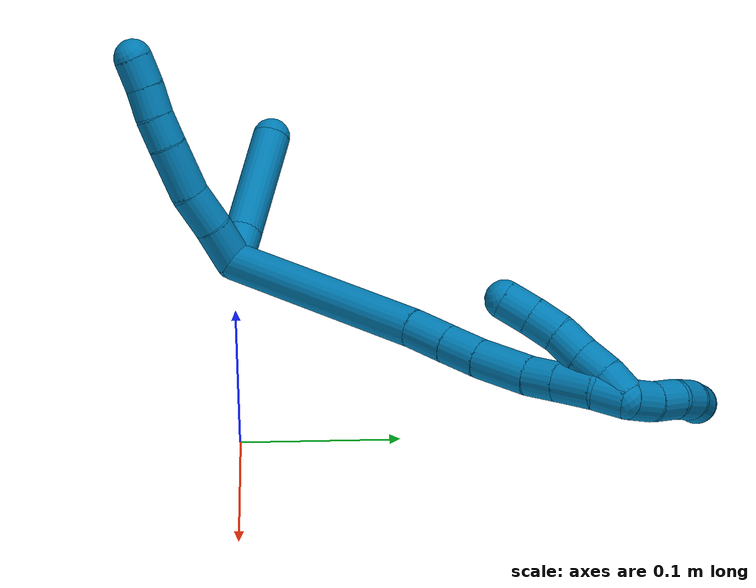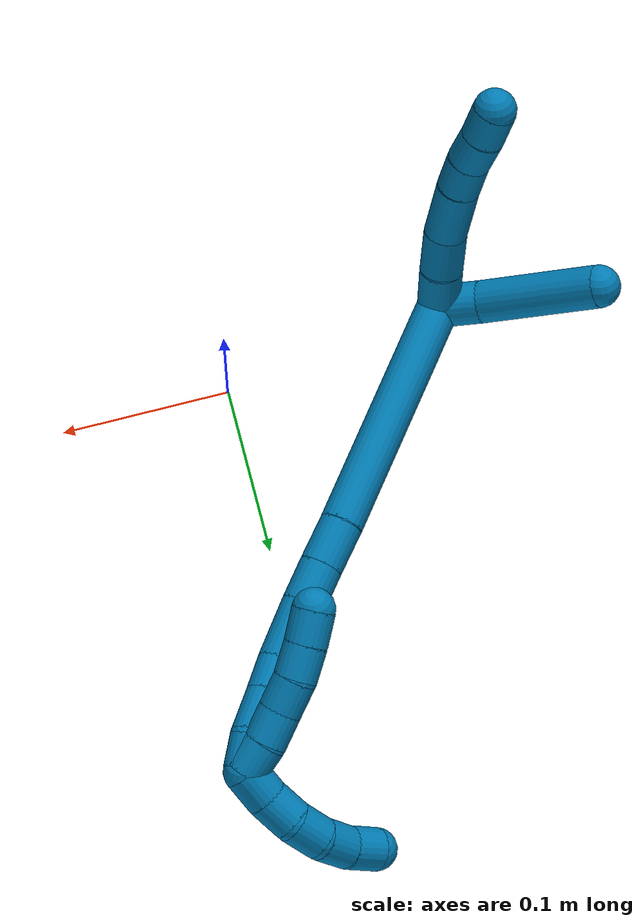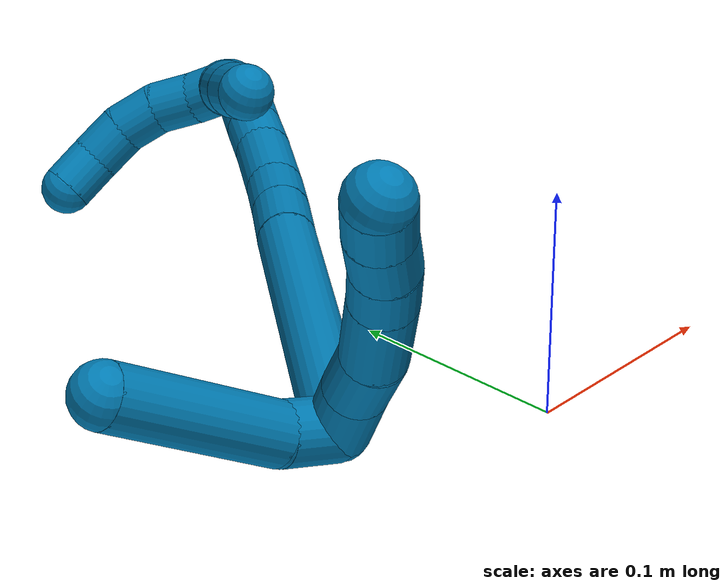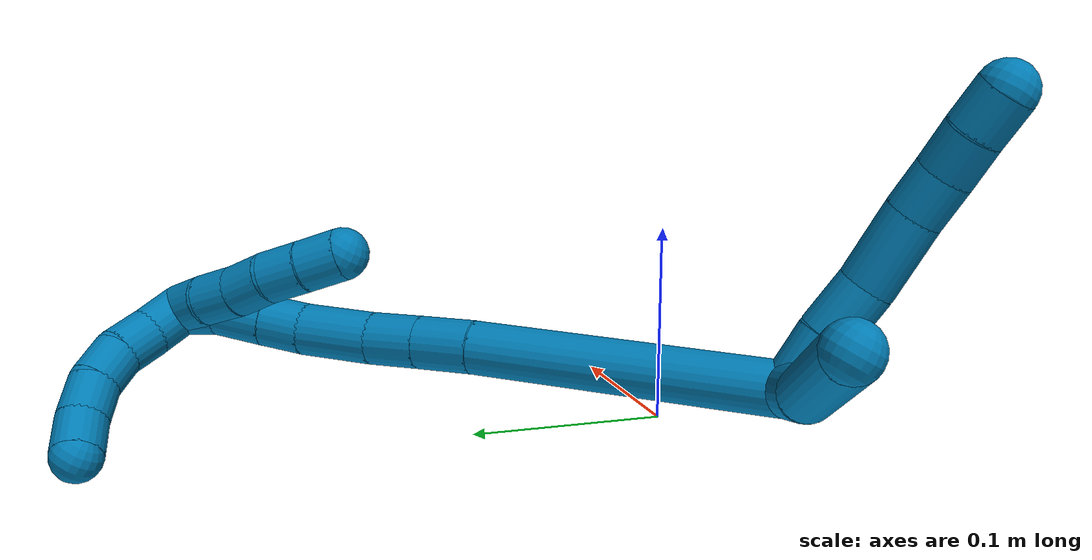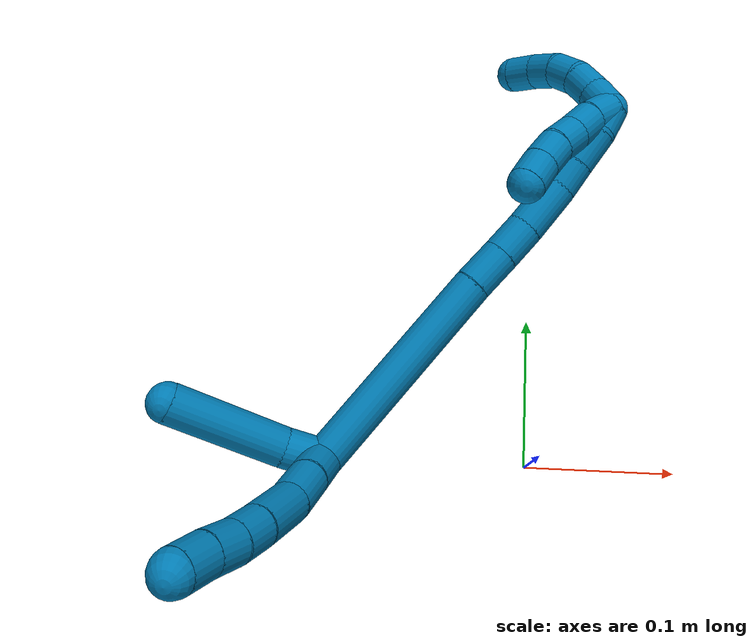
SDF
<sdf version="1.7">
 <world name="default">
  <model name="9">
   <static>0</static>
   <link name="9">
    <collision name="collision-cylinder-e_1_2_8">
     <pose>-0.001161 0.000855 0.013918 -0.061347 -0.083066 0.00255</pose>
     <geometry><cylinder><radius>0.0125</radius><length>0.027984</length></cylinder></geometry>
     <surface>
      <friction><ode><mu>1.16</mu><mu2>1.16</mu2><slip1>0</slip1><slip2>0</slip2></ode></friction>
      <contact><ode><kp>1e+06</kp><kd>1</kd><max_vel>0</max_vel><min_depth>0.001</min_depth></ode></contact>
     </surface>
    </collision>
    <visual name="visual-cylinder-e_1_2_8">
     <pose>-0.001161 0.000855 0.013918 -0.061347 -0.083066 0.00255</pose>
     <geometry><cylinder><radius>0.0125</radius><length>0.027984</length></cylinder></geometry>
     <material><ambient>0 0.490196 0.709804 1</ambient></material>
    </visual>
    <collision name="collision-cylinder-e_2_8_9">
     <pose>-0.00457 0.001947 0.04078 -0.018321 -0.171946 0.001579</pose>
     <geometry><cylinder><radius>0.0125</radius><length>0.026281</length></cylinder></geometry>
     <surface>
      <friction><ode><mu>1.16</mu><mu2>1.16</mu2><slip1>0</slip1><slip2>0</slip2></ode></friction>
      <contact><ode><kp>1e+06</kp><kd>1</kd><max_vel>0</max_vel><min_depth>0.001</min_depth></ode></contact>
     </surface>
    </collision>
    <visual name="visual-cylinder-e_2_8_9">
     <pose>-0.00457 0.001947 0.04078 -0.018321 -0.171946 0.001579</pose>
     <geometry><cylinder><radius>0.0125</radius><length>0.026281</length></cylinder></geometry>
     <material><ambient>0 0.490196 0.709804 1</ambient></material>
    </visual>
    <collision name="collision-cylinder-e_3_9_10">
     <pose>-0.009584 0.005665 0.07071 -0.202138 -0.158151 0.016072</pose>
     <geometry><cylinder><radius>0.0125</radius><length>0.035116</length></cylinder></geometry>
     <surface>
      <friction><ode><mu>1.16</mu><mu2>1.16</mu2><slip1>0</slip1><slip2>0</slip2></ode></friction>
      <contact><ode><kp>1e+06</kp><kd>1</kd><max_vel>0</max_vel><min_depth>0.001</min_depth></ode></contact>
     </surface>
    </collision>
    <visual name="visual-cylinder-e_3_9_10">
     <pose>-0.009584 0.005665 0.07071 -0.202138 -0.158151 0.016072</pose>
     <geometry><cylinder><radius>0.0125</radius><length>0.035116</length></cylinder></geometry>
     <material><ambient>0 0.490196 0.709804 1</ambient></material>
    </visual>
    <collision name="collision-cylinder-e_4_10_11">
     <pose>-0.01474 0.01145 0.097387 -0.233407 -0.235551 0.027742</pose>
     <geometry><cylinder><radius>0.0125</radius><length>0.020487</length></cylinder></geometry>
     <surface>
      <friction><ode><mu>1.16</mu><mu2>1.16</mu2><slip1>0</slip1><slip2>0</slip2></ode></friction>
      <contact><ode><kp>1e+06</kp><kd>1</kd><max_vel>0</max_vel><min_depth>0.001</min_depth></ode></contact>
     </surface>
    </collision>
    <visual name="visual-cylinder-e_4_10_11">
     <pose>-0.01474 0.01145 0.097387 -0.233407 -0.235551 0.027742</pose>
     <geometry><cylinder><radius>0.0125</radius><length>0.020487</length></cylinder></geometry>
     <material><ambient>0 0.490196 0.709804 1</ambient></material>
    </visual>
    <collision name="collision-cylinder-e_5_11_12">
     <pose>-0.019771 0.017122 0.116128 -0.35624 -0.266882 0.048324</pose>
     <geometry><cylinder><radius>0.0125</radius><length>0.020023</length></cylinder></geometry>
     <surface>
      <friction><ode><mu>1.16</mu><mu2>1.16</mu2><slip1>0</slip1><slip2>0</slip2></ode></friction>
      <contact><ode><kp>1e+06</kp><kd>1</kd><max_vel>0</max_vel><min_depth>0.001</min_depth></ode></contact>
     </surface>
    </collision>
    <visual name="visual-cylinder-e_5_11_12">
     <pose>-0.019771 0.017122 0.116128 -0.35624 -0.266882 0.048324</pose>
     <geometry><cylinder><radius>0.0125</radius><length>0.020023</length></cylinder></geometry>
     <material><ambient>0 0.490196 0.709804 1</ambient></material>
    </visual>
    <collision name="collision-cylinder-e_6_12_6">
     <pose>-0.025086 0.023081 0.134518 -0.270647 -0.269352 0.036893</pose>
     <geometry><cylinder><radius>0.0125</radius><length>0.020108</length></cylinder></geometry>
     <surface>
      <friction><ode><mu>1.16</mu><mu2>1.16</mu2><slip1>0</slip1><slip2>0</slip2></ode></friction>
      <contact><ode><kp>1e+06</kp><kd>1</kd><max_vel>0</max_vel><min_depth>0.001</min_depth></ode></contact>
     </surface>
    </collision>
    <visual name="visual-cylinder-e_6_12_6">
     <pose>-0.025086 0.023081 0.134518 -0.270647 -0.269352 0.036893</pose>
     <geometry><cylinder><radius>0.0125</radius><length>0.020108</length></cylinder></geometry>
     <material><ambient>0 0.490196 0.709804 1</ambient></material>
    </visual>
    <collision name="collision-cylinder-e_1_2_13">
     <pose>-0.008686 0.009014 0.00194 -1.35885 -0.755563 0.620375</pose>
     <geometry><cylinder><radius>0.0125</radius><length>0.025334</length></cylinder></geometry>
     <surface>
      <friction><ode><mu>1.16</mu><mu2>1.16</mu2><slip1>0</slip1><slip2>0</slip2></ode></friction>
      <contact><ode><kp>1e+06</kp><kd>1</kd><max_vel>0</max_vel><min_depth>0.001</min_depth></ode></contact>
     </surface>
    </collision>
    <visual name="visual-cylinder-e_1_2_13">
     <pose>-0.008686 0.009014 0.00194 -1.35885 -0.755563 0.620375</pose>
     <geometry><cylinder><radius>0.0125</radius><length>0.025334</length></cylinder></geometry>
     <material><ambient>0 0.490196 0.709804 1</ambient></material>
    </visual>
    <collision name="collision-cylinder-e_2_13_5">
     <pose>-0.036595 0.047514 0.016318 -1.17159 -0.540929 0.363844</pose>
     <geometry><cylinder><radius>0.0125</radius><length>0.074666</length></cylinder></geometry>
     <surface>
      <friction><ode><mu>1.16</mu><mu2>1.16</mu2><slip1>0</slip1><slip2>0</slip2></ode></friction>
      <contact><ode><kp>1e+06</kp><kd>1</kd><max_vel>0</max_vel><min_depth>0.001</min_depth></ode></contact>
     </surface>
    </collision>
    <visual name="visual-cylinder-e_2_13_5">
     <pose>-0.036595 0.047514 0.016318 -1.17159 -0.540929 0.363844</pose>
     <geometry><cylinder><radius>0.0125</radius><length>0.074666</length></cylinder></geometry>
     <material><ambient>0 0.490196 0.709804 1</ambient></material>
    </visual>
    <collision name="collision-cylinder-e_1_2_14">
     <pose>0.061148 0.025149 -0.028866 -2.4249 1.01141 -1.95224</pose>
     <geometry><cylinder><radius>0.0125</radius><length>0.144289</length></cylinder></geometry>
     <surface>
      <friction><ode><mu>1.16</mu><mu2>1.16</mu2><slip1>0</slip1><slip2>0</slip2></ode></friction>
      <contact><ode><kp>1e+06</kp><kd>1</kd><max_vel>0</max_vel><min_depth>0.001</min_depth></ode></contact>
     </surface>
    </collision>
    <visual name="visual-cylinder-e_1_2_14">
     <pose>0.061148 0.025149 -0.028866 -2.4249 1.01141 -1.95224</pose>
     <geometry><cylinder><radius>0.0125</radius><length>0.144289</length></cylinder></geometry>
     <material><ambient>0 0.490196 0.709804 1</ambient></material>
    </visual>
    <collision name="collision-cylinder-e_2_14_15">
     <pose>0.133967 0.054398 -0.063696 -2.53936 1.01572 -2.12365</pose>
     <geometry><cylinder><radius>0.0125</radius><length>0.027464</length></cylinder></geometry>
     <surface>
      <friction><ode><mu>1.16</mu><mu2>1.16</mu2><slip1>0</slip1><slip2>0</slip2></ode></friction>
      <contact><ode><kp>1e+06</kp><kd>1</kd><max_vel>0</max_vel><min_depth>0.001</min_depth></ode></contact>
     </surface>
    </collision>
    <visual name="visual-cylinder-e_2_14_15">
     <pose>0.133967 0.054398 -0.063696 -2.53936 1.01572 -2.12365</pose>
     <geometry><cylinder><radius>0.0125</radius><length>0.027464</length></cylinder></geometry>
     <material><ambient>0 0.490196 0.709804 1</ambient></material>
    </visual>
    <collision name="collision-cylinder-e_3_15_16">
     <pose>0.156081 0.062391 -0.075151 -2.52479 0.998324 -2.08402</pose>
     <geometry><cylinder><radius>0.0125</radius><length>0.02485</length></cylinder></geometry>
     <surface>
      <friction><ode><mu>1.16</mu><mu2>1.16</mu2><slip1>0</slip1><slip2>0</slip2></ode></friction>
      <contact><ode><kp>1e+06</kp><kd>1</kd><max_vel>0</max_vel><min_depth>0.001</min_depth></ode></contact>
     </surface>
    </collision>
    <visual name="visual-cylinder-e_3_15_16">
     <pose>0.156081 0.062391 -0.075151 -2.52479 0.998324 -2.08402</pose>
     <geometry><cylinder><radius>0.0125</radius><length>0.02485</length></cylinder></geometry>
     <material><ambient>0 0.490196 0.709804 1</ambient></material>
    </visual>
    <collision name="collision-cylinder-e_4_16_17">
     <pose>0.181741 0.073028 -0.0879 -2.39292 0.993602 -1.88747</pose>
     <geometry><cylinder><radius>0.0125</radius><length>0.036315</length></cylinder></geometry>
     <surface>
      <friction><ode><mu>1.16</mu><mu2>1.16</mu2><slip1>0</slip1><slip2>0</slip2></ode></friction>
      <contact><ode><kp>1e+06</kp><kd>1</kd><max_vel>0</max_vel><min_depth>0.001</min_depth></ode></contact>
     </surface>
    </collision>
    <visual name="visual-cylinder-e_4_16_17">
     <pose>0.181741 0.073028 -0.0879 -2.39292 0.993602 -1.88747</pose>
     <geometry><cylinder><radius>0.0125</radius><length>0.036315</length></cylinder></geometry>
     <material><ambient>0 0.490196 0.709804 1</ambient></material>
    </visual>
    <collision name="collision-cylinder-e_5_17_18">
     <pose>0.205509 0.08455 -0.098517 -2.1835 0.971578 -1.5872</pose>
     <geometry><cylinder><radius>0.0125</radius><length>0.020712</length></cylinder></geometry>
     <surface>
      <friction><ode><mu>1.16</mu><mu2>1.16</mu2><slip1>0</slip1><slip2>0</slip2></ode></friction>
      <contact><ode><kp>1e+06</kp><kd>1</kd><max_vel>0</max_vel><min_depth>0.001</min_depth></ode></contact>
     </surface>
    </collision>
    <visual name="visual-cylinder-e_5_17_18">
     <pose>0.205509 0.08455 -0.098517 -2.1835 0.971578 -1.5872</pose>
     <geometry><cylinder><radius>0.0125</radius><length>0.020712</length></cylinder></geometry>
     <material><ambient>0 0.490196 0.709804 1</ambient></material>
    </visual>
    <collision name="collision-cylinder-e_6_18_19">
     <pose>0.225085 0.095203 -0.106064 -2.19022 0.991351 -1.6192</pose>
     <geometry><cylinder><radius>0.0125</radius><length>0.02635</length></cylinder></geometry>
     <surface>
      <friction><ode><mu>1.16</mu><mu2>1.16</mu2><slip1>0</slip1><slip2>0</slip2></ode></friction>
      <contact><ode><kp>1e+06</kp><kd>1</kd><max_vel>0</max_vel><min_depth>0.001</min_depth></ode></contact>
     </surface>
    </collision>
    <visual name="visual-cylinder-e_6_18_19">
     <pose>0.225085 0.095203 -0.106064 -2.19022 0.991351 -1.6192</pose>
     <geometry><cylinder><radius>0.0125</radius><length>0.02635</length></cylinder></geometry>
     <material><ambient>0 0.490196 0.709804 1</ambient></material>
    </visual>
    <collision name="collision-cylinder-e_7_19_1">
     <pose>0.243207 0.105968 -0.115341 -2.37584 0.788134 -1.60272</pose>
     <geometry><cylinder><radius>0.0125</radius><length>0.02002</length></cylinder></geometry>
     <surface>
      <friction><ode><mu>1.16</mu><mu2>1.16</mu2><slip1>0</slip1><slip2>0</slip2></ode></friction>
      <contact><ode><kp>1e+06</kp><kd>1</kd><max_vel>0</max_vel><min_depth>0.001</min_depth></ode></contact>
     </surface>
    </collision>
    <visual name="visual-cylinder-e_7_19_1">
     <pose>0.243207 0.105968 -0.115341 -2.37584 0.788134 -1.60272</pose>
     <geometry><cylinder><radius>0.0125</radius><length>0.02002</length></cylinder></geometry>
     <material><ambient>0 0.490196 0.709804 1</ambient></material>
    </visual>
    <collision name="collision-cylinder-e_1_1_20">
     <pose>0.248365 0.11731 -0.127821 -2.42421 -0.195151 0.510783</pose>
     <geometry><cylinder><radius>0.0125</radius><length>0.02</length></cylinder></geometry>
     <surface>
      <friction><ode><mu>1.16</mu><mu2>1.16</mu2><slip1>0</slip1><slip2>0</slip2></ode></friction>
      <contact><ode><kp>1e+06</kp><kd>1</kd><max_vel>0</max_vel><min_depth>0.001</min_depth></ode></contact>
     </surface>
    </collision>
    <visual name="visual-cylinder-e_1_1_20">
     <pose>0.248365 0.11731 -0.127821 -2.42421 -0.195151 0.510783</pose>
     <geometry><cylinder><radius>0.0125</radius><length>0.02</length></cylinder></geometry>
     <material><ambient>0 0.490196 0.709804 1</ambient></material>
    </visual>
    <collision name="collision-cylinder-e_2_20_21">
     <pose>0.243513 0.130998 -0.141469 -2.28345 -0.295571 0.629188</pose>
     <geometry><cylinder><radius>0.0125</radius><length>0.02</length></cylinder></geometry>
     <surface>
      <friction><ode><mu>1.16</mu><mu2>1.16</mu2><slip1>0</slip1><slip2>0</slip2></ode></friction>
      <contact><ode><kp>1e+06</kp><kd>1</kd><max_vel>0</max_vel><min_depth>0.001</min_depth></ode></contact>
     </surface>
    </collision>
    <visual name="visual-cylinder-e_2_20_21">
     <pose>0.243513 0.130998 -0.141469 -2.28345 -0.295571 0.629188</pose>
     <geometry><cylinder><radius>0.0125</radius><length>0.02</length></cylinder></geometry>
     <material><ambient>0 0.490196 0.709804 1</ambient></material>
    </visual>
    <collision name="collision-cylinder-e_3_21_22">
     <pose>0.23563 0.14353 -0.154599 -2.48538 -0.520117 1.32692</pose>
     <geometry><cylinder><radius>0.0125</radius><length>0.02</length></cylinder></geometry>
     <surface>
      <friction><ode><mu>1.16</mu><mu2>1.16</mu2><slip1>0</slip1><slip2>0</slip2></ode></friction>
      <contact><ode><kp>1e+06</kp><kd>1</kd><max_vel>0</max_vel><min_depth>0.001</min_depth></ode></contact>
     </surface>
    </collision>
    <visual name="visual-cylinder-e_3_21_22">
     <pose>0.23563 0.14353 -0.154599 -2.48538 -0.520117 1.32692</pose>
     <geometry><cylinder><radius>0.0125</radius><length>0.02</length></cylinder></geometry>
     <material><ambient>0 0.490196 0.709804 1</ambient></material>
    </visual>
    <collision name="collision-cylinder-e_4_22_23">
     <pose>0.223916 0.151744 -0.168256 -2.73511 -0.740242 2.16509</pose>
     <geometry><cylinder><radius>0.0125</radius><length>0.02</length></cylinder></geometry>
     <surface>
      <friction><ode><mu>1.16</mu><mu2>1.16</mu2><slip1>0</slip1><slip2>0</slip2></ode></friction>
      <contact><ode><kp>1e+06</kp><kd>1</kd><max_vel>0</max_vel><min_depth>0.001</min_depth></ode></contact>
     </surface>
    </collision>
    <visual name="visual-cylinder-e_4_22_23">
     <pose>0.223916 0.151744 -0.168256 -2.73511 -0.740242 2.16509</pose>
     <geometry><cylinder><radius>0.0125</radius><length>0.02</length></cylinder></geometry>
     <material><ambient>0 0.490196 0.709804 1</ambient></material>
    </visual>
    <collision name="collision-cylinder-e_5_23_4">
     <pose>0.209044 0.157134 -0.180314 -2.70366 -0.948719 2.32367</pose>
     <geometry><cylinder><radius>0.0125</radius><length>0.02</length></cylinder></geometry>
     <surface>
      <friction><ode><mu>1.16</mu><mu2>1.16</mu2><slip1>0</slip1><slip2>0</slip2></ode></friction>
      <contact><ode><kp>1e+06</kp><kd>1</kd><max_vel>0</max_vel><min_depth>0.001</min_depth></ode></contact>
     </surface>
    </collision>
    <visual name="visual-cylinder-e_5_23_4">
     <pose>0.209044 0.157134 -0.180314 -2.70366 -0.948719 2.32367</pose>
     <geometry><cylinder><radius>0.0125</radius><length>0.02</length></cylinder></geometry>
     <material><ambient>0 0.490196 0.709804 1</ambient></material>
    </visual>
    <collision name="collision-cylinder-e_1_1_24">
     <pose>0.242699 0.111183 -0.113944 -0.049681 -0.864072 0.022911</pose>
     <geometry><cylinder><radius>0.0125</radius><length>0.02</length></cylinder></geometry>
     <surface>
      <friction><ode><mu>1.16</mu><mu2>1.16</mu2><slip1>0</slip1><slip2>0</slip2></ode></friction>
      <contact><ode><kp>1e+06</kp><kd>1</kd><max_vel>0</max_vel><min_depth>0.001</min_depth></ode></contact>
     </surface>
    </collision>
    <visual name="visual-cylinder-e_1_1_24">
     <pose>0.242699 0.111183 -0.113944 -0.049681 -0.864072 0.022911</pose>
     <geometry><cylinder><radius>0.0125</radius><length>0.02</length></cylinder></geometry>
     <material><ambient>0 0.490196 0.709804 1</ambient></material>
    </visual>
    <collision name="collision-cylinder-e_2_24_25">
     <pose>0.227784 0.11013 -0.100774 0.202939 -0.819776 -0.088423</pose>
     <geometry><cylinder><radius>0.0125</radius><length>0.02</length></cylinder></geometry>
     <surface>
      <friction><ode><mu>1.16</mu><mu2>1.16</mu2><slip1>0</slip1><slip2>0</slip2></ode></friction>
      <contact><ode><kp>1e+06</kp><kd>1</kd><max_vel>0</max_vel><min_depth>0.001</min_depth></ode></contact>
     </surface>
    </collision>
    <visual name="visual-cylinder-e_2_24_25">
     <pose>0.227784 0.11013 -0.100774 0.202939 -0.819776 -0.088423</pose>
     <geometry><cylinder><radius>0.0125</radius><length>0.02</length></cylinder></geometry>
     <material><ambient>0 0.490196 0.709804 1</ambient></material>
    </visual>
    <collision name="collision-cylinder-e_3_25_26">
     <pose>0.213662 0.108048 -0.086804 0.096643 -0.749436 -0.038035</pose>
     <geometry><cylinder><radius>0.0125</radius><length>0.02</length></cylinder></geometry>
     <surface>
      <friction><ode><mu>1.16</mu><mu2>1.16</mu2><slip1>0</slip1><slip2>0</slip2></ode></friction>
      <contact><ode><kp>1e+06</kp><kd>1</kd><max_vel>0</max_vel><min_depth>0.001</min_depth></ode></contact>
     </surface>
    </collision>
    <visual name="visual-cylinder-e_3_25_26">
     <pose>0.213662 0.108048 -0.086804 0.096643 -0.749436 -0.038035</pose>
     <geometry><cylinder><radius>0.0125</radius><length>0.02</length></cylinder></geometry>
     <material><ambient>0 0.490196 0.709804 1</ambient></material>
    </visual>
    <collision name="collision-cylinder-e_4_26_27">
     <pose>0.20024 0.104835 -0.072445 0.340708 -0.722103 -0.12973</pose>
     <geometry><cylinder><radius>0.0125</radius><length>0.02</length></cylinder></geometry>
     <surface>
      <friction><ode><mu>1.16</mu><mu2>1.16</mu2><slip1>0</slip1><slip2>0</slip2></ode></friction>
      <contact><ode><kp>1e+06</kp><kd>1</kd><max_vel>0</max_vel><min_depth>0.001</min_depth></ode></contact>
     </surface>
    </collision>
    <visual name="visual-cylinder-e_4_26_27">
     <pose>0.20024 0.104835 -0.072445 0.340708 -0.722103 -0.12973</pose>
     <geometry><cylinder><radius>0.0125</radius><length>0.02</length></cylinder></geometry>
     <material><ambient>0 0.490196 0.709804 1</ambient></material>
    </visual>
    <collision name="collision-cylinder-e_5_27_3">
     <pose>0.187449 0.099265 -0.058132 0.400103 -0.666411 -0.140127</pose>
     <geometry><cylinder><radius>0.0125</radius><length>0.02</length></cylinder></geometry>
     <surface>
      <friction><ode><mu>1.16</mu><mu2>1.16</mu2><slip1>0</slip1><slip2>0</slip2></ode></friction>
      <contact><ode><kp>1e+06</kp><kd>1</kd><max_vel>0</max_vel><min_depth>0.001</min_depth></ode></contact>
     </surface>
    </collision>
    <visual name="visual-cylinder-e_5_27_3">
     <pose>0.187449 0.099265 -0.058132 0.400103 -0.666411 -0.140127</pose>
     <geometry><cylinder><radius>0.0125</radius><length>0.02</length></cylinder></geometry>
     <material><ambient>0 0.490196 0.709804 1</ambient></material>
    </visual>
    <collision name="collision-sphere-3">
     <pose>0.181267 0.096203 -0.050893 0 -0 0</pose>
     <geometry><sphere><radius>0.0125</radius></sphere></geometry>
     <surface>
      <friction><ode><mu>1.16</mu><mu2>1.16</mu2><slip1>0</slip1><slip2>0</slip2></ode></friction>
      <contact><ode><kp>1e+06</kp><kd>1</kd><max_vel>0</max_vel><min_depth>0.001</min_depth></ode></contact>
     </surface>
    </collision>
    <visual name="visual-sphere-3">
     <pose>0.181267 0.096203 -0.050893 0 -0 0</pose>
     <geometry><sphere><radius>0.0125</radius></sphere></geometry>
     <material><ambient>0 0.490196 0.709804 1</ambient></material>
    </visual>
    <collision name="collision-sphere-27">
     <pose>0.193631 0.102327 -0.065372 0 -0 0</pose>
     <geometry><sphere><radius>0.0125</radius></sphere></geometry>
     <surface>
      <friction><ode><mu>1.16</mu><mu2>1.16</mu2><slip1>0</slip1><slip2>0</slip2></ode></friction>
      <contact><ode><kp>1e+06</kp><kd>1</kd><max_vel>0</max_vel><min_depth>0.001</min_depth></ode></contact>
     </surface>
    </collision>
    <visual name="visual-sphere-27">
     <pose>0.193631 0.102327 -0.065372 0 -0 0</pose>
     <geometry><sphere><radius>0.0125</radius></sphere></geometry>
     <material><ambient>0 0.490196 0.709804 1</ambient></material>
    </visual>
    <collision name="collision-sphere-26">
     <pose>0.20685 0.107342 -0.079517 0 -0 0</pose>
     <geometry><sphere><radius>0.0125</radius></sphere></geometry>
     <surface>
      <friction><ode><mu>1.16</mu><mu2>1.16</mu2><slip1>0</slip1><slip2>0</slip2></ode></friction>
      <contact><ode><kp>1e+06</kp><kd>1</kd><max_vel>0</max_vel><min_depth>0.001</min_depth></ode></contact>
     </surface>
    </collision>
    <visual name="visual-sphere-26">
     <pose>0.20685 0.107342 -0.079517 0 -0 0</pose>
     <geometry><sphere><radius>0.0125</radius></sphere></geometry>
     <material><ambient>0 0.490196 0.709804 1</ambient></material>
    </visual>
    <collision name="collision-sphere-25">
     <pose>0.220474 0.108755 -0.094091 0 -0 0</pose>
     <geometry><sphere><radius>0.0125</radius></sphere></geometry>
     <surface>
      <friction><ode><mu>1.16</mu><mu2>1.16</mu2><slip1>0</slip1><slip2>0</slip2></ode></friction>
      <contact><ode><kp>1e+06</kp><kd>1</kd><max_vel>0</max_vel><min_depth>0.001</min_depth></ode></contact>
     </surface>
    </collision>
    <visual name="visual-sphere-25">
     <pose>0.220474 0.108755 -0.094091 0 -0 0</pose>
     <geometry><sphere><radius>0.0125</radius></sphere></geometry>
     <material><ambient>0 0.490196 0.709804 1</ambient></material>
    </visual>
    <collision name="collision-sphere-24">
     <pose>0.235094 0.111506 -0.107458 0 -0 0</pose>
     <geometry><sphere><radius>0.0125</radius></sphere></geometry>
     <surface>
      <friction><ode><mu>1.16</mu><mu2>1.16</mu2><slip1>0</slip1><slip2>0</slip2></ode></friction>
      <contact><ode><kp>1e+06</kp><kd>1</kd><max_vel>0</max_vel><min_depth>0.001</min_depth></ode></contact>
     </surface>
    </collision>
    <visual name="visual-sphere-24">
     <pose>0.235094 0.111506 -0.107458 0 -0 0</pose>
     <geometry><sphere><radius>0.0125</radius></sphere></geometry>
     <material><ambient>0 0.490196 0.709804 1</ambient></material>
    </visual>
    <collision name="collision-sphere-4">
     <pose>0.200918 0.159605 -0.185592 0 -0 0</pose>
     <geometry><sphere><radius>0.0125</radius></sphere></geometry>
     <surface>
      <friction><ode><mu>1.16</mu><mu2>1.16</mu2><slip1>0</slip1><slip2>0</slip2></ode></friction>
      <contact><ode><kp>1e+06</kp><kd>1</kd><max_vel>0</max_vel><min_depth>0.001</min_depth></ode></contact>
     </surface>
    </collision>
    <visual name="visual-sphere-4">
     <pose>0.200918 0.159605 -0.185592 0 -0 0</pose>
     <geometry><sphere><radius>0.0125</radius></sphere></geometry>
     <material><ambient>0 0.490196 0.709804 1</ambient></material>
    </visual>
    <collision name="collision-sphere-23">
     <pose>0.217171 0.154663 -0.175037 0 -0 0</pose>
     <geometry><sphere><radius>0.0125</radius></sphere></geometry>
     <surface>
      <friction><ode><mu>1.16</mu><mu2>1.16</mu2><slip1>0</slip1><slip2>0</slip2></ode></friction>
      <contact><ode><kp>1e+06</kp><kd>1</kd><max_vel>0</max_vel><min_depth>0.001</min_depth></ode></contact>
     </surface>
    </collision>
    <visual name="visual-sphere-23">
     <pose>0.217171 0.154663 -0.175037 0 -0 0</pose>
     <geometry><sphere><radius>0.0125</radius></sphere></geometry>
     <material><ambient>0 0.490196 0.709804 1</ambient></material>
    </visual>
    <collision name="collision-sphere-22">
     <pose>0.23066 0.148824 -0.161474 0 -0 0</pose>
     <geometry><sphere><radius>0.0125</radius></sphere></geometry>
     <surface>
      <friction><ode><mu>1.16</mu><mu2>1.16</mu2><slip1>0</slip1><slip2>0</slip2></ode></friction>
      <contact><ode><kp>1e+06</kp><kd>1</kd><max_vel>0</max_vel><min_depth>0.001</min_depth></ode></contact>
     </surface>
    </collision>
    <visual name="visual-sphere-22">
     <pose>0.23066 0.148824 -0.161474 0 -0 0</pose>
     <geometry><sphere><radius>0.0125</radius></sphere></geometry>
     <material><ambient>0 0.490196 0.709804 1</ambient></material>
    </visual>
    <collision name="collision-sphere-21">
     <pose>0.2406 0.138236 -0.147723 0 -0 0</pose>
     <geometry><sphere><radius>0.0125</radius></sphere></geometry>
     <surface>
      <friction><ode><mu>1.16</mu><mu2>1.16</mu2><slip1>0</slip1><slip2>0</slip2></ode></friction>
      <contact><ode><kp>1e+06</kp><kd>1</kd><max_vel>0</max_vel><min_depth>0.001</min_depth></ode></contact>
     </surface>
    </collision>
    <visual name="visual-sphere-21">
     <pose>0.2406 0.138236 -0.147723 0 -0 0</pose>
     <geometry><sphere><radius>0.0125</radius></sphere></geometry>
     <material><ambient>0 0.490196 0.709804 1</ambient></material>
    </visual>
    <collision name="collision-sphere-20">
     <pose>0.246426 0.123759 -0.135214 0 -0 0</pose>
     <geometry><sphere><radius>0.0125</radius></sphere></geometry>
     <surface>
      <friction><ode><mu>1.16</mu><mu2>1.16</mu2><slip1>0</slip1><slip2>0</slip2></ode></friction>
      <contact><ode><kp>1e+06</kp><kd>1</kd><max_vel>0</max_vel><min_depth>0.001</min_depth></ode></contact>
     </surface>
    </collision>
    <visual name="visual-sphere-20">
     <pose>0.246426 0.123759 -0.135214 0 -0 0</pose>
     <geometry><sphere><radius>0.0125</radius></sphere></geometry>
     <material><ambient>0 0.490196 0.709804 1</ambient></material>
    </visual>
    <collision name="collision-sphere-12">
     <pose>-0.022411 0.02049 0.125179 0 -0 0</pose>
     <geometry><sphere><radius>0.0125</radius></sphere></geometry>
     <surface>
      <friction><ode><mu>1.16</mu><mu2>1.16</mu2><slip1>0</slip1><slip2>0</slip2></ode></friction>
      <contact><ode><kp>1e+06</kp><kd>1</kd><max_vel>0</max_vel><min_depth>0.001</min_depth></ode></contact>
     </surface>
    </collision>
    <visual name="visual-sphere-12">
     <pose>-0.022411 0.02049 0.125179 0 -0 0</pose>
     <geometry><sphere><radius>0.0125</radius></sphere></geometry>
     <material><ambient>0 0.490196 0.709804 1</ambient></material>
    </visual>
    <collision name="collision-sphere-11">
     <pose>-0.01713 0.013754 0.107077 0 -0 0</pose>
     <geometry><sphere><radius>0.0125</radius></sphere></geometry>
     <surface>
      <friction><ode><mu>1.16</mu><mu2>1.16</mu2><slip1>0</slip1><slip2>0</slip2></ode></friction>
      <contact><ode><kp>1e+06</kp><kd>1</kd><max_vel>0</max_vel><min_depth>0.001</min_depth></ode></contact>
     </surface>
    </collision>
    <visual name="visual-sphere-11">
     <pose>-0.01713 0.013754 0.107077 0 -0 0</pose>
     <geometry><sphere><radius>0.0125</radius></sphere></geometry>
     <material><ambient>0 0.490196 0.709804 1</ambient></material>
    </visual>
    <collision name="collision-sphere-10">
     <pose>-0.012349 0.009146 0.087696 0 -0 0</pose>
     <geometry><sphere><radius>0.0125</radius></sphere></geometry>
     <surface>
      <friction><ode><mu>1.16</mu><mu2>1.16</mu2><slip1>0</slip1><slip2>0</slip2></ode></friction>
      <contact><ode><kp>1e+06</kp><kd>1</kd><max_vel>0</max_vel><min_depth>0.001</min_depth></ode></contact>
     </surface>
    </collision>
    <visual name="visual-sphere-10">
     <pose>-0.012349 0.009146 0.087696 0 -0 0</pose>
     <geometry><sphere><radius>0.0125</radius></sphere></geometry>
     <material><ambient>0 0.490196 0.709804 1</ambient></material>
    </visual>
    <collision name="collision-sphere-9">
     <pose>-0.006818 0.002184 0.053724 0 -0 0</pose>
     <geometry><sphere><radius>0.0125</radius></sphere></geometry>
     <surface>
      <friction><ode><mu>1.16</mu><mu2>1.16</mu2><slip1>0</slip1><slip2>0</slip2></ode></friction>
      <contact><ode><kp>1e+06</kp><kd>1</kd><max_vel>0</max_vel><min_depth>0.001</min_depth></ode></contact>
     </surface>
    </collision>
    <visual name="visual-sphere-9">
     <pose>-0.006818 0.002184 0.053724 0 -0 0</pose>
     <geometry><sphere><radius>0.0125</radius></sphere></geometry>
     <material><ambient>0 0.490196 0.709804 1</ambient></material>
    </visual>
    <collision name="collision-sphere-2">
     <geometry><sphere><radius>0.0125</radius></sphere></geometry>
     <surface>
      <friction><ode><mu>1.16</mu><mu2>1.16</mu2><slip1>0</slip1><slip2>0</slip2></ode></friction>
      <contact><ode><kp>1e+06</kp><kd>1</kd><max_vel>0</max_vel><min_depth>0.001</min_depth></ode></contact>
     </surface>
    </collision>
    <visual name="visual-sphere-2">
     <geometry><sphere><radius>0.0125</radius></sphere></geometry>
     <material><ambient>0 0.490196 0.709804 1</ambient></material>
    </visual>
    <collision name="collision-sphere-19">
     <pose>0.236109 0.101076 -0.110253 0 -0 0</pose>
     <geometry><sphere><radius>0.0125</radius></sphere></geometry>
     <surface>
      <friction><ode><mu>1.16</mu><mu2>1.16</mu2><slip1>0</slip1><slip2>0</slip2></ode></friction>
      <contact><ode><kp>1e+06</kp><kd>1</kd><max_vel>0</max_vel><min_depth>0.001</min_depth></ode></contact>
     </surface>
    </collision>
    <visual name="visual-sphere-19">
     <pose>0.236109 0.101076 -0.110253 0 -0 0</pose>
     <geometry><sphere><radius>0.0125</radius></sphere></geometry>
     <material><ambient>0 0.490196 0.709804 1</ambient></material>
    </visual>
    <collision name="collision-sphere-8">
     <pose>-0.002322 0.00171 0.027835 0 -0 0</pose>
     <geometry><sphere><radius>0.0125</radius></sphere></geometry>
     <surface>
      <friction><ode><mu>1.16</mu><mu2>1.16</mu2><slip1>0</slip1><slip2>0</slip2></ode></friction>
      <contact><ode><kp>1e+06</kp><kd>1</kd><max_vel>0</max_vel><min_depth>0.001</min_depth></ode></contact>
     </surface>
    </collision>
    <visual name="visual-sphere-8">
     <pose>-0.002322 0.00171 0.027835 0 -0 0</pose>
     <geometry><sphere><radius>0.0125</radius></sphere></geometry>
     <material><ambient>0 0.490196 0.709804 1</ambient></material>
    </visual>
    <collision name="collision-sphere-6">
     <pose>-0.027762 0.025672 0.143857 0 -0 0</pose>
     <geometry><sphere><radius>0.0125</radius></sphere></geometry>
     <surface>
      <friction><ode><mu>1.16</mu><mu2>1.16</mu2><slip1>0</slip1><slip2>0</slip2></ode></friction>
      <contact><ode><kp>1e+06</kp><kd>1</kd><max_vel>0</max_vel><min_depth>0.001</min_depth></ode></contact>
     </surface>
    </collision>
    <visual name="visual-sphere-6">
     <pose>-0.027762 0.025672 0.143857 0 -0 0</pose>
     <geometry><sphere><radius>0.0125</radius></sphere></geometry>
     <material><ambient>0 0.490196 0.709804 1</ambient></material>
    </visual>
    <collision name="collision-sphere-13">
     <pose>-0.017371 0.018027 0.003879 0 -0 0</pose>
     <geometry><sphere><radius>0.0125</radius></sphere></geometry>
     <surface>
      <friction><ode><mu>1.16</mu><mu2>1.16</mu2><slip1>0</slip1><slip2>0</slip2></ode></friction>
      <contact><ode><kp>1e+06</kp><kd>1</kd><max_vel>0</max_vel><min_depth>0.001</min_depth></ode></contact>
     </surface>
    </collision>
    <visual name="visual-sphere-13">
     <pose>-0.017371 0.018027 0.003879 0 -0 0</pose>
     <geometry><sphere><radius>0.0125</radius></sphere></geometry>
     <material><ambient>0 0.490196 0.709804 1</ambient></material>
    </visual>
    <collision name="collision-sphere-5">
     <pose>-0.055819 0.077001 0.028758 0 -0 0</pose>
     <geometry><sphere><radius>0.0125</radius></sphere></geometry>
     <surface>
      <friction><ode><mu>1.16</mu><mu2>1.16</mu2><slip1>0</slip1><slip2>0</slip2></ode></friction>
      <contact><ode><kp>1e+06</kp><kd>1</kd><max_vel>0</max_vel><min_depth>0.001</min_depth></ode></contact>
     </surface>
    </collision>
    <visual name="visual-sphere-5">
     <pose>-0.055819 0.077001 0.028758 0 -0 0</pose>
     <geometry><sphere><radius>0.0125</radius></sphere></geometry>
     <material><ambient>0 0.490196 0.709804 1</ambient></material>
    </visual>
    <collision name="collision-sphere-14">
     <pose>0.122297 0.050298 -0.057733 0 -0 0</pose>
     <geometry><sphere><radius>0.0125</radius></sphere></geometry>
     <surface>
      <friction><ode><mu>1.16</mu><mu2>1.16</mu2><slip1>0</slip1><slip2>0</slip2></ode></friction>
      <contact><ode><kp>1e+06</kp><kd>1</kd><max_vel>0</max_vel><min_depth>0.001</min_depth></ode></contact>
     </surface>
    </collision>
    <visual name="visual-sphere-14">
     <pose>0.122297 0.050298 -0.057733 0 -0 0</pose>
     <geometry><sphere><radius>0.0125</radius></sphere></geometry>
     <material><ambient>0 0.490196 0.709804 1</ambient></material>
    </visual>
    <collision name="collision-sphere-15">
     <pose>0.145637 0.058497 -0.06966 0 -0 0</pose>
     <geometry><sphere><radius>0.0125</radius></sphere></geometry>
     <surface>
      <friction><ode><mu>1.16</mu><mu2>1.16</mu2><slip1>0</slip1><slip2>0</slip2></ode></friction>
      <contact><ode><kp>1e+06</kp><kd>1</kd><max_vel>0</max_vel><min_depth>0.001</min_depth></ode></contact>
     </surface>
    </collision>
    <visual name="visual-sphere-15">
     <pose>0.145637 0.058497 -0.06966 0 -0 0</pose>
     <geometry><sphere><radius>0.0125</radius></sphere></geometry>
     <material><ambient>0 0.490196 0.709804 1</ambient></material>
    </visual>
    <collision name="collision-sphere-16">
     <pose>0.166526 0.066284 -0.080641 0 -0 0</pose>
     <geometry><sphere><radius>0.0125</radius></sphere></geometry>
     <surface>
      <friction><ode><mu>1.16</mu><mu2>1.16</mu2><slip1>0</slip1><slip2>0</slip2></ode></friction>
      <contact><ode><kp>1e+06</kp><kd>1</kd><max_vel>0</max_vel><min_depth>0.001</min_depth></ode></contact>
     </surface>
    </collision>
    <visual name="visual-sphere-16">
     <pose>0.166526 0.066284 -0.080641 0 -0 0</pose>
     <geometry><sphere><radius>0.0125</radius></sphere></geometry>
     <material><ambient>0 0.490196 0.709804 1</ambient></material>
    </visual>
    <collision name="collision-sphere-17">
     <pose>0.196957 0.079772 -0.095158 0 -0 0</pose>
     <geometry><sphere><radius>0.0125</radius></sphere></geometry>
     <surface>
      <friction><ode><mu>1.16</mu><mu2>1.16</mu2><slip1>0</slip1><slip2>0</slip2></ode></friction>
      <contact><ode><kp>1e+06</kp><kd>1</kd><max_vel>0</max_vel><min_depth>0.001</min_depth></ode></contact>
     </surface>
    </collision>
    <visual name="visual-sphere-17">
     <pose>0.196957 0.079772 -0.095158 0 -0 0</pose>
     <geometry><sphere><radius>0.0125</radius></sphere></geometry>
     <material><ambient>0 0.490196 0.709804 1</ambient></material>
    </visual>
    <collision name="collision-sphere-18">
     <pose>0.214061 0.089329 -0.101876 0 -0 0</pose>
     <geometry><sphere><radius>0.0125</radius></sphere></geometry>
     <surface>
      <friction><ode><mu>1.16</mu><mu2>1.16</mu2><slip1>0</slip1><slip2>0</slip2></ode></friction>
      <contact><ode><kp>1e+06</kp><kd>1</kd><max_vel>0</max_vel><min_depth>0.001</min_depth></ode></contact>
     </surface>
    </collision>
    <visual name="visual-sphere-18">
     <pose>0.214061 0.089329 -0.101876 0 -0 0</pose>
     <geometry><sphere><radius>0.0125</radius></sphere></geometry>
     <material><ambient>0 0.490196 0.709804 1</ambient></material>
    </visual>
    <collision name="collision-sphere-1">
     <pose>0.250304 0.110861 -0.120429 0 -0 0</pose>
     <geometry><sphere><radius>0.0125</radius></sphere></geometry>
     <surface>
      <friction><ode><mu>1.16</mu><mu2>1.16</mu2><slip1>0</slip1><slip2>0</slip2></ode></friction>
      <contact><ode><kp>1e+06</kp><kd>1</kd><max_vel>0</max_vel><min_depth>0.001</min_depth></ode></contact>
     </surface>
    </collision>
    <visual name="visual-sphere-1">
     <pose>0.250304 0.110861 -0.120429 0 -0 0</pose>
     <geometry><sphere><radius>0.0125</radius></sphere></geometry>
     <material><ambient>0 0.490196 0.709804 1</ambient></material>
    </visual>
    <inertial>
     <pose>0.104053 0.060642 -0.039963 0 -0 0</pose>
     <mass>0.75</mass>
     <inertia>
      <ixx>-0.000114</ixx>
      <ixy>0</ixy>
      <ixz>0</ixz>
      <iyy>0.000162</iyy>
      <iyz>0</iyz>
      <izz>-0.000325</izz>
     </inertia>
    </inertial>
   </link>
   <pose>-0.12826 -0.004037 0.05193 0.44579 -0.280334 0.404271</pose>
  </model>
 </world>
</sdf>
